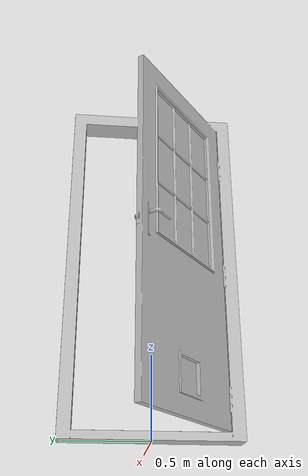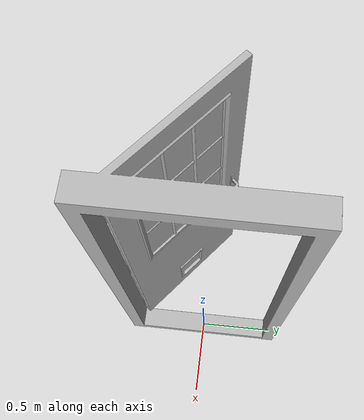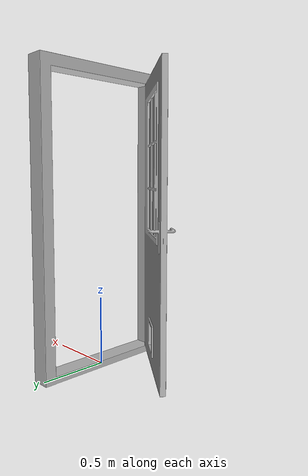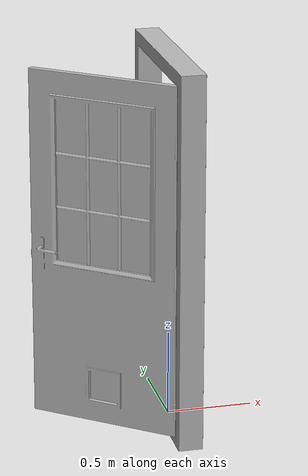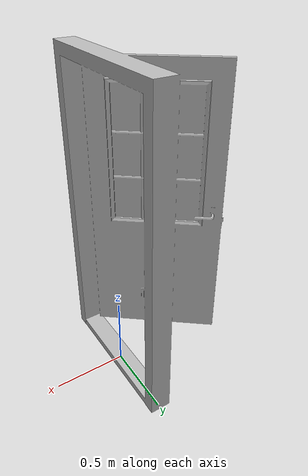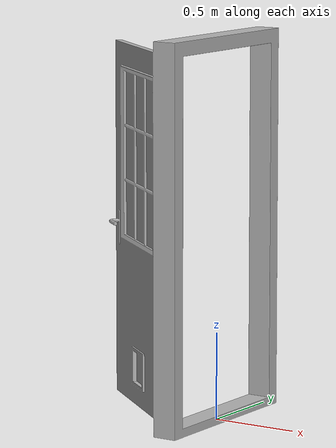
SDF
<?xml version='1.0'?>
<sdf version='1.4'>
  <model name='758'>
    <pose>0 0 0 0 0 0</pose>
    <static>true</static>
    <link name='link'>
      <collision name='collision'>
        <pose>0 0 0 0 0 0</pose>
        <geometry>
          <box>
            <size>0.839759 1.06 2</size>
          </box>
        </geometry>
      </collision>
      <visual name='visual'>
        <pose>0 0 0 0 0 0</pose>
        <geometry>
          <mesh><uri>model://758/758.dae</uri></mesh>
        </geometry>
      </visual>
    </link>
  </model>
</sdf>
